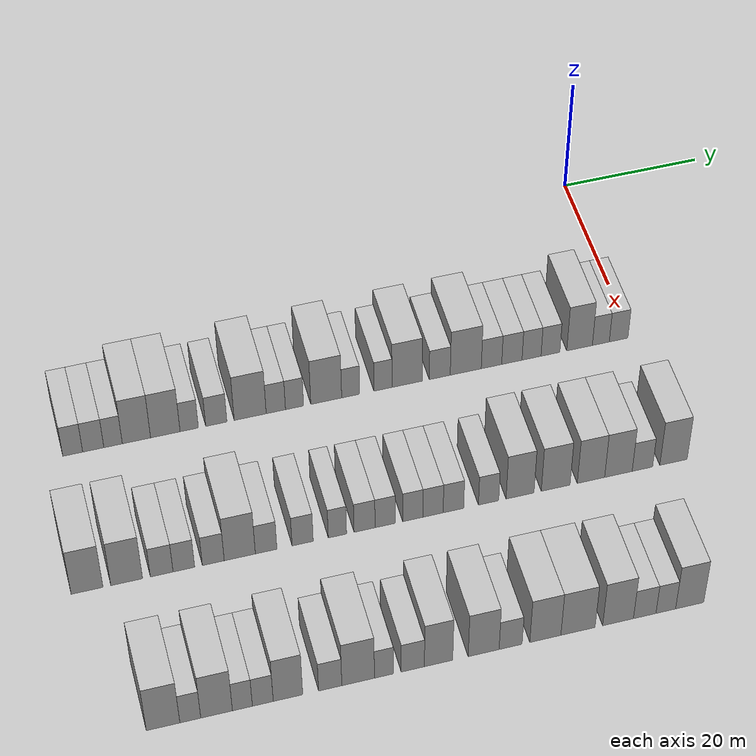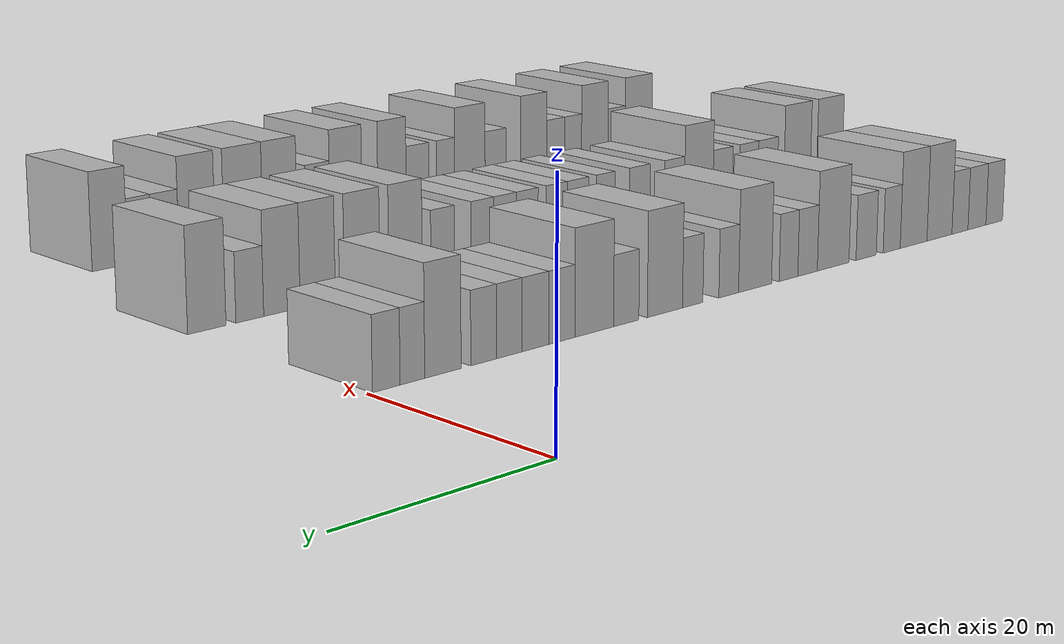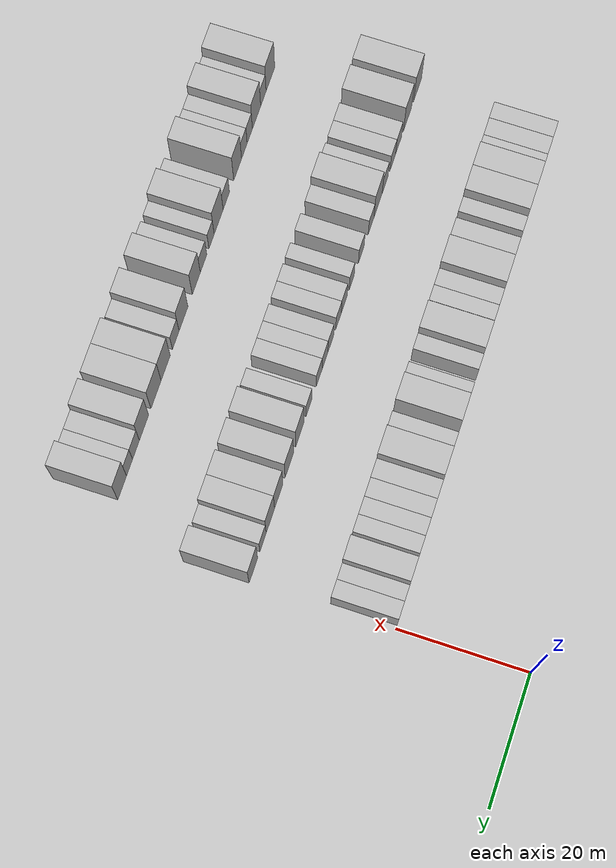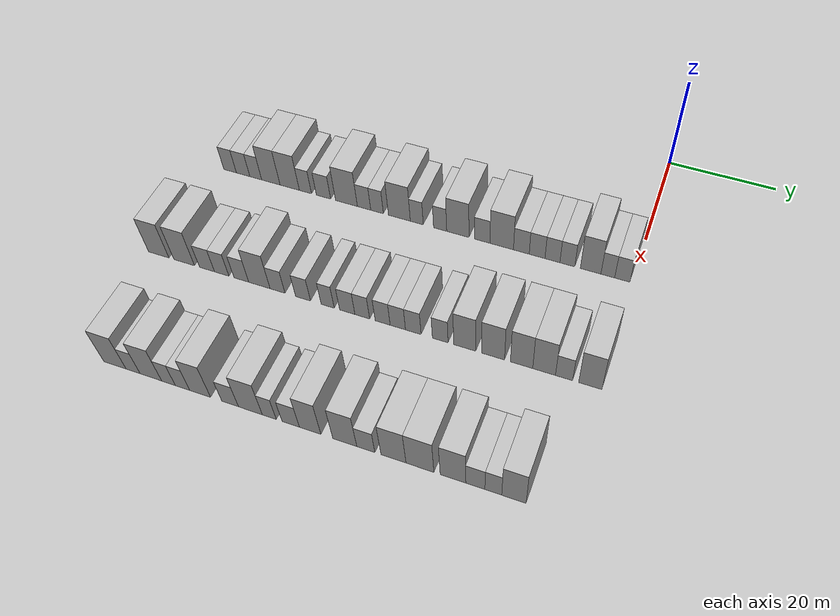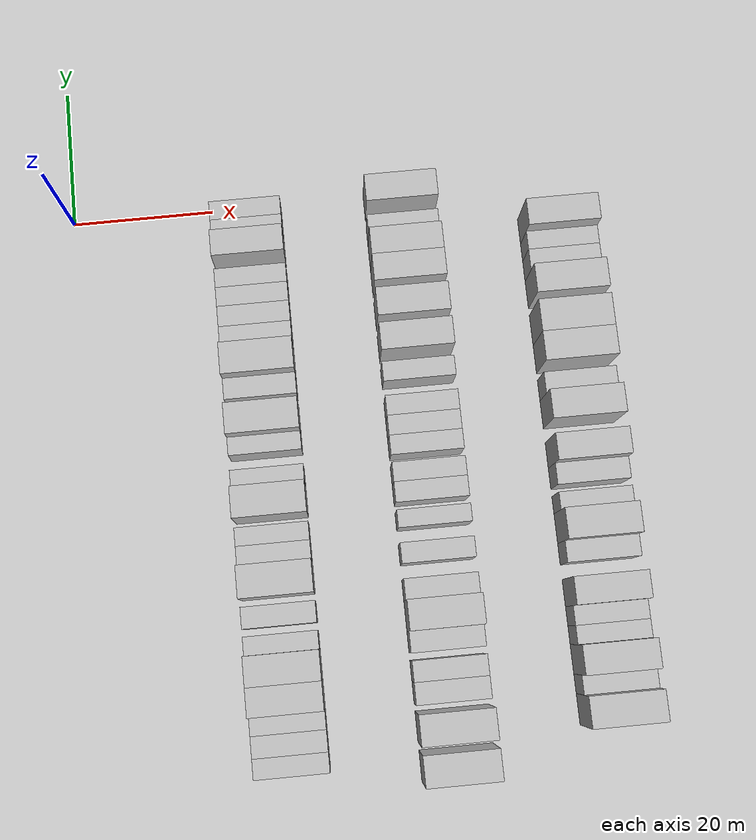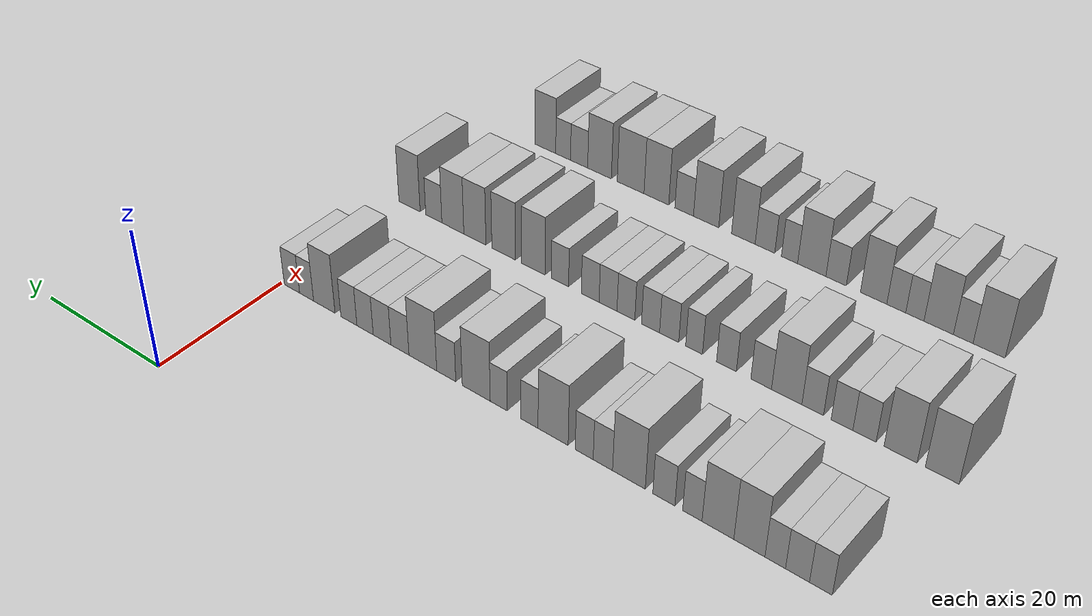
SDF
<sdf version="1.6">
 <world name="default">
  <model name="building_45">
   <static>1</static>
   <pose>25.0000 -77.9295 0 0.000000 0.000000 0.000000</pose>
   <link name="link">
    <pose>0 0 3.00 0 0 0</pose>
    <collision name="collision"><geometry><box><size>10.0000 2.6673 6.0000</size></box></geometry></collision>
    <visual name="visual">
     <cast_shadows>0</cast_shadows>
     <geometry><box><size>10.0000 2.6673 6.0000</size></box></geometry>
     <material>
      <script>
       <uri>model://HANNAS_wall/materials/scripts</uri>
       <uri>model://HANNAS_wall/materials/textures</uri>
       <name>vrc/HANNAS_wall</name>
      </script>
     </material>
    </visual>
   </link>
  </model>
  <model name="building_46">
   <static>1</static>
   <pose>25.0000 -75.1723 0 0.000000 0.000000 0.000000</pose>
   <link name="link">
    <pose>0 0 3.00 0 0 0</pose>
    <collision name="collision"><geometry><box><size>10.0000 2.8470 6.0000</size></box></geometry></collision>
    <visual name="visual">
     <cast_shadows>0</cast_shadows>
     <geometry><box><size>10.0000 2.8470 6.0000</size></box></geometry>
     <material>
      <script>
       <uri>model://HANNAS_wall/materials/scripts</uri>
       <uri>model://HANNAS_wall/materials/textures</uri>
       <name>vrc/HANNAS_wall</name>
      </script>
     </material>
    </visual>
   </link>
  </model>
  <model name="building_47">
   <static>1</static>
   <pose>25.0000 -72.5054 0 0.000000 0.000000 0.000000</pose>
   <link name="link">
    <pose>0 0 3.00 0 0 0</pose>
    <collision name="collision"><geometry><box><size>10.0000 2.4868 6.0000</size></box></geometry></collision>
    <visual name="visual">
     <cast_shadows>0</cast_shadows>
     <geometry><box><size>10.0000 2.4868 6.0000</size></box></geometry>
     <material>
      <script>
       <uri>model://HANNAS_wall/materials/scripts</uri>
       <uri>model://HANNAS_wall/materials/textures</uri>
       <name>vrc/HANNAS_wall</name>
      </script>
     </material>
    </visual>
   </link>
  </model>
  <model name="building_48">
   <static>1</static>
   <pose>25.0000 -69.3493 0 0.000000 0.000000 0.000000</pose>
   <link name="link">
    <pose>0 0 4.50 0 0 0</pose>
    <collision name="collision"><geometry><box><size>10.0000 3.8254 9.0000</size></box></geometry></collision>
    <visual name="visual">
     <cast_shadows>0</cast_shadows>
     <geometry><box><size>10.0000 3.8254 9.0000</size></box></geometry>
     <material>
      <script>
       <uri>model://HANNAS_wall/materials/scripts</uri>
       <uri>model://HANNAS_wall/materials/textures</uri>
       <name>vrc/HANNAS_wall</name>
      </script>
     </material>
    </visual>
   </link>
  </model>
  <model name="building_49">
   <static>1</static>
   <pose>25.0000 -65.4338 0 0.000000 0.000000 0.000000</pose>
   <link name="link">
    <pose>0 0 4.50 0 0 0</pose>
    <collision name="collision"><geometry><box><size>10.0000 4.0057 9.0000</size></box></geometry></collision>
    <visual name="visual">
     <cast_shadows>0</cast_shadows>
     <geometry><box><size>10.0000 4.0057 9.0000</size></box></geometry>
     <material>
      <script>
       <uri>model://HANNAS_wall/materials/scripts</uri>
       <uri>model://HANNAS_wall/materials/textures</uri>
       <name>vrc/HANNAS_wall</name>
      </script>
     </material>
    </visual>
   </link>
  </model>
  <model name="building_50">
   <static>1</static>
   <pose>25.0000 -62.1860 0 0.000000 0.000000 0.000000</pose>
   <link name="link">
    <pose>0 0 3.00 0 0 0</pose>
    <collision name="collision"><geometry><box><size>10.0000 2.4898 6.0000</size></box></geometry></collision>
    <visual name="visual">
     <cast_shadows>0</cast_shadows>
     <geometry><box><size>10.0000 2.4898 6.0000</size></box></geometry>
     <material>
      <script>
       <uri>model://HANNAS_wall/materials/scripts</uri>
       <uri>model://HANNAS_wall/materials/textures</uri>
       <name>vrc/HANNAS_wall</name>
      </script>
     </material>
    </visual>
   </link>
  </model>
  <model name="building_51">
   <static>1</static>
   <pose>25.0000 -58.4913 0 0.000000 0.000000 0.000000</pose>
   <link name="link">
    <pose>0 0 3.00 0 0 0</pose>
    <collision name="collision"><geometry><box><size>10.0000 2.8997 6.0000</size></box></geometry></collision>
    <visual name="visual">
     <cast_shadows>0</cast_shadows>
     <geometry><box><size>10.0000 2.8997 6.0000</size></box></geometry>
     <material>
      <script>
       <uri>model://HANNAS_wall/materials/scripts</uri>
       <uri>model://HANNAS_wall/materials/textures</uri>
       <name>vrc/HANNAS_wall</name>
      </script>
     </material>
    </visual>
   </link>
  </model>
  <model name="building_52">
   <static>1</static>
   <pose>25.0000 -53.8438 0 0.000000 0.000000 0.000000</pose>
   <link name="link">
    <pose>0 0 4.50 0 0 0</pose>
    <collision name="collision"><geometry><box><size>10.0000 4.3952 9.0000</size></box></geometry></collision>
    <visual name="visual">
     <cast_shadows>0</cast_shadows>
     <geometry><box><size>10.0000 4.3952 9.0000</size></box></geometry>
     <material>
      <script>
       <uri>model://HANNAS_wall/materials/scripts</uri>
       <uri>model://HANNAS_wall/materials/textures</uri>
       <name>vrc/HANNAS_wall</name>
      </script>
     </material>
    </visual>
   </link>
  </model>
  <model name="building_53">
   <static>1</static>
   <pose>25.0000 -50.3168 0 0.000000 0.000000 0.000000</pose>
   <link name="link">
    <pose>0 0 3.00 0 0 0</pose>
    <collision name="collision"><geometry><box><size>10.0000 2.6588 6.0000</size></box></geometry></collision>
    <visual name="visual">
     <cast_shadows>0</cast_shadows>
     <geometry><box><size>10.0000 2.6588 6.0000</size></box></geometry>
     <material>
      <script>
       <uri>model://HANNAS_wall/materials/scripts</uri>
       <uri>model://HANNAS_wall/materials/textures</uri>
       <name>vrc/HANNAS_wall</name>
      </script>
     </material>
    </visual>
   </link>
  </model>
  <model name="building_54">
   <static>1</static>
   <pose>25.0000 -47.7360 0 0.000000 0.000000 0.000000</pose>
   <link name="link">
    <pose>0 0 3.00 0 0 0</pose>
    <collision name="collision"><geometry><box><size>10.0000 2.5027 6.0000</size></box></geometry></collision>
    <visual name="visual">
     <cast_shadows>0</cast_shadows>
     <geometry><box><size>10.0000 2.5027 6.0000</size></box></geometry>
     <material>
      <script>
       <uri>model://HANNAS_wall/materials/scripts</uri>
       <uri>model://HANNAS_wall/materials/textures</uri>
       <name>vrc/HANNAS_wall</name>
      </script>
     </material>
    </visual>
   </link>
  </model>
  <model name="building_55">
   <static>1</static>
   <pose>25.0000 -43.3398 0 0.000000 0.000000 0.000000</pose>
   <link name="link">
    <pose>0 0 4.50 0 0 0</pose>
    <collision name="collision"><geometry><box><size>10.0000 4.2897 9.0000</size></box></geometry></collision>
    <visual name="visual">
     <cast_shadows>0</cast_shadows>
     <geometry><box><size>10.0000 4.2897 9.0000</size></box></geometry>
     <material>
      <script>
       <uri>model://HANNAS_wall/materials/scripts</uri>
       <uri>model://HANNAS_wall/materials/textures</uri>
       <name>vrc/HANNAS_wall</name>
      </script>
     </material>
    </visual>
   </link>
  </model>
  <model name="building_56">
   <static>1</static>
   <pose>25.0000 -39.9396 0 0.000000 0.000000 0.000000</pose>
   <link name="link">
    <pose>0 0 3.00 0 0 0</pose>
    <collision name="collision"><geometry><box><size>10.0000 2.5107 6.0000</size></box></geometry></collision>
    <visual name="visual">
     <cast_shadows>0</cast_shadows>
     <geometry><box><size>10.0000 2.5107 6.0000</size></box></geometry>
     <material>
      <script>
       <uri>model://HANNAS_wall/materials/scripts</uri>
       <uri>model://HANNAS_wall/materials/textures</uri>
       <name>vrc/HANNAS_wall</name>
      </script>
     </material>
    </visual>
   </link>
  </model>
  <model name="building_57">
   <static>1</static>
   <pose>25.0000 -35.4234 0 0.000000 0.000000 0.000000</pose>
   <link name="link">
    <pose>0 0 3.00 0 0 0</pose>
    <collision name="collision"><geometry><box><size>10.0000 2.5218 6.0000</size></box></geometry></collision>
    <visual name="visual">
     <cast_shadows>0</cast_shadows>
     <geometry><box><size>10.0000 2.5218 6.0000</size></box></geometry>
     <material>
      <script>
       <uri>model://HANNAS_wall/materials/scripts</uri>
       <uri>model://HANNAS_wall/materials/textures</uri>
       <name>vrc/HANNAS_wall</name>
      </script>
     </material>
    </visual>
   </link>
  </model>
  <model name="building_58">
   <static>1</static>
   <pose>25.0000 -32.0395 0 0.000000 0.000000 0.000000</pose>
   <link name="link">
    <pose>0 0 4.50 0 0 0</pose>
    <collision name="collision"><geometry><box><size>10.0000 4.2459 9.0000</size></box></geometry></collision>
    <visual name="visual">
     <cast_shadows>0</cast_shadows>
     <geometry><box><size>10.0000 4.2459 9.0000</size></box></geometry>
     <material>
      <script>
       <uri>model://HANNAS_wall/materials/scripts</uri>
       <uri>model://HANNAS_wall/materials/textures</uri>
       <name>vrc/HANNAS_wall</name>
      </script>
     </material>
    </visual>
   </link>
  </model>
  <model name="building_59">
   <static>1</static>
   <pose>25.0000 -27.4357 0 0.000000 0.000000 0.000000</pose>
   <link name="link">
    <pose>0 0 3.00 0 0 0</pose>
    <collision name="collision"><geometry><box><size>10.0000 2.9616 6.0000</size></box></geometry></collision>
    <visual name="visual">
     <cast_shadows>0</cast_shadows>
     <geometry><box><size>10.0000 2.9616 6.0000</size></box></geometry>
     <material>
      <script>
       <uri>model://HANNAS_wall/materials/scripts</uri>
       <uri>model://HANNAS_wall/materials/textures</uri>
       <name>vrc/HANNAS_wall</name>
      </script>
     </material>
    </visual>
   </link>
  </model>
  <model name="building_60">
   <static>1</static>
   <pose>25.0000 -23.7570 0 0.000000 0.000000 0.000000</pose>
   <link name="link">
    <pose>0 0 4.50 0 0 0</pose>
    <collision name="collision"><geometry><box><size>10.0000 4.3959 9.0000</size></box></geometry></collision>
    <visual name="visual">
     <cast_shadows>0</cast_shadows>
     <geometry><box><size>10.0000 4.3959 9.0000</size></box></geometry>
     <material>
      <script>
       <uri>model://HANNAS_wall/materials/scripts</uri>
       <uri>model://HANNAS_wall/materials/textures</uri>
       <name>vrc/HANNAS_wall</name>
      </script>
     </material>
    </visual>
   </link>
  </model>
  <model name="building_61">
   <static>1</static>
   <pose>25.0000 -20.1028 0 0.000000 0.000000 0.000000</pose>
   <link name="link">
    <pose>0 0 3.00 0 0 0</pose>
    <collision name="collision"><geometry><box><size>10.0000 2.9125 6.0000</size></box></geometry></collision>
    <visual name="visual">
     <cast_shadows>0</cast_shadows>
     <geometry><box><size>10.0000 2.9125 6.0000</size></box></geometry>
     <material>
      <script>
       <uri>model://HANNAS_wall/materials/scripts</uri>
       <uri>model://HANNAS_wall/materials/textures</uri>
       <name>vrc/HANNAS_wall</name>
      </script>
     </material>
    </visual>
   </link>
  </model>
  <model name="building_62">
   <static>1</static>
   <pose>25.0000 -17.1964 0 0.000000 0.000000 0.000000</pose>
   <link name="link">
    <pose>0 0 3.00 0 0 0</pose>
    <collision name="collision"><geometry><box><size>10.0000 2.9003 6.0000</size></box></geometry></collision>
    <visual name="visual">
     <cast_shadows>0</cast_shadows>
     <geometry><box><size>10.0000 2.9003 6.0000</size></box></geometry>
     <material>
      <script>
       <uri>model://HANNAS_wall/materials/scripts</uri>
       <uri>model://HANNAS_wall/materials/textures</uri>
       <name>vrc/HANNAS_wall</name>
      </script>
     </material>
    </visual>
   </link>
  </model>
  <model name="building_63">
   <static>1</static>
   <pose>25.0000 -14.3856 0 0.000000 0.000000 0.000000</pose>
   <link name="link">
    <pose>0 0 3.00 0 0 0</pose>
    <collision name="collision"><geometry><box><size>10.0000 2.7212 6.0000</size></box></geometry></collision>
    <visual name="visual">
     <cast_shadows>0</cast_shadows>
     <geometry><box><size>10.0000 2.7212 6.0000</size></box></geometry>
     <material>
      <script>
       <uri>model://HANNAS_wall/materials/scripts</uri>
       <uri>model://HANNAS_wall/materials/textures</uri>
       <name>vrc/HANNAS_wall</name>
      </script>
     </material>
    </visual>
   </link>
  </model>
  <model name="building_64">
   <static>1</static>
   <pose>25.0000 -11.6765 0 0.000000 0.000000 0.000000</pose>
   <link name="link">
    <pose>0 0 3.00 0 0 0</pose>
    <collision name="collision"><geometry><box><size>10.0000 2.6970 6.0000</size></box></geometry></collision>
    <visual name="visual">
     <cast_shadows>0</cast_shadows>
     <geometry><box><size>10.0000 2.6970 6.0000</size></box></geometry>
     <material>
      <script>
       <uri>model://HANNAS_wall/materials/scripts</uri>
       <uri>model://HANNAS_wall/materials/textures</uri>
       <name>vrc/HANNAS_wall</name>
      </script>
     </material>
    </visual>
   </link>
  </model>
  <model name="building_65">
   <static>1</static>
   <pose>25.0000 -7.4830 0 0.000000 0.000000 0.000000</pose>
   <link name="link">
    <pose>0 0 4.50 0 0 0</pose>
    <collision name="collision"><geometry><box><size>10.0000 3.6899 9.0000</size></box></geometry></collision>
    <visual name="visual">
     <cast_shadows>0</cast_shadows>
     <geometry><box><size>10.0000 3.6899 9.0000</size></box></geometry>
     <material>
      <script>
       <uri>model://HANNAS_wall/materials/scripts</uri>
       <uri>model://HANNAS_wall/materials/textures</uri>
       <name>vrc/HANNAS_wall</name>
      </script>
     </material>
    </visual>
   </link>
  </model>
  <model name="building_66">
   <static>1</static>
   <pose>25.0000 -4.4138 0 0.000000 0.000000 0.000000</pose>
   <link name="link">
    <pose>0 0 3.00 0 0 0</pose>
    <collision name="collision"><geometry><box><size>10.0000 2.4485 6.0000</size></box></geometry></collision>
    <visual name="visual">
     <cast_shadows>0</cast_shadows>
     <geometry><box><size>10.0000 2.4485 6.0000</size></box></geometry>
     <material>
      <script>
       <uri>model://HANNAS_wall/materials/scripts</uri>
       <uri>model://HANNAS_wall/materials/textures</uri>
       <name>vrc/HANNAS_wall</name>
      </script>
     </material>
    </visual>
   </link>
  </model>
  <model name="building_67">
   <static>1</static>
   <pose>25.0000 -1.8404 0 0.000000 0.000000 0.000000</pose>
   <link name="link">
    <pose>0 0 3.00 0 0 0</pose>
    <collision name="collision"><geometry><box><size>10.0000 2.6983 6.0000</size></box></geometry></collision>
    <visual name="visual">
     <cast_shadows>0</cast_shadows>
     <geometry><box><size>10.0000 2.6983 6.0000</size></box></geometry>
     <material>
      <script>
       <uri>model://HANNAS_wall/materials/scripts</uri>
       <uri>model://HANNAS_wall/materials/textures</uri>
       <name>vrc/HANNAS_wall</name>
      </script>
     </material>
    </visual>
   </link>
  </model>
  <model name="building_178">
   <static>1</static>
   <pose>47.0000 -80.0000 0 0.000000 0.000000 0.000000</pose>
   <link name="link">
    <pose>0 0 4.50 0 0 0</pose>
    <collision name="collision"><geometry><box><size>10.0000 4.0924 9.0000</size></box></geometry></collision>
    <visual name="visual">
     <cast_shadows>0</cast_shadows>
     <geometry><box><size>10.0000 4.0924 9.0000</size></box></geometry>
     <material>
      <script>
       <uri>model://HANNAS_wall/materials/scripts</uri>
       <uri>model://HANNAS_wall/materials/textures</uri>
       <name>vrc/HANNAS_wall</name>
      </script>
     </material>
    </visual>
   </link>
  </model>
  <model name="building_179">
   <static>1</static>
   <pose>47.0000 -74.9035 0 0.000000 0.000000 0.000000</pose>
   <link name="link">
    <pose>0 0 4.50 0 0 0</pose>
    <collision name="collision"><geometry><box><size>10.0000 4.1007 9.0000</size></box></geometry></collision>
    <visual name="visual">
     <cast_shadows>0</cast_shadows>
     <geometry><box><size>10.0000 4.1007 9.0000</size></box></geometry>
     <material>
      <script>
       <uri>model://HANNAS_wall/materials/scripts</uri>
       <uri>model://HANNAS_wall/materials/textures</uri>
       <name>vrc/HANNAS_wall</name>
      </script>
     </material>
    </visual>
   </link>
  </model>
  <model name="building_180">
   <static>1</static>
   <pose>47.0000 -70.3770 0 0.000000 0.000000 0.000000</pose>
   <link name="link">
    <pose>0 0 3.00 0 0 0</pose>
    <collision name="collision"><geometry><box><size>10.0000 2.9522 6.0000</size></box></geometry></collision>
    <visual name="visual">
     <cast_shadows>0</cast_shadows>
     <geometry><box><size>10.0000 2.9522 6.0000</size></box></geometry>
     <material>
      <script>
       <uri>model://HANNAS_wall/materials/scripts</uri>
       <uri>model://HANNAS_wall/materials/textures</uri>
       <name>vrc/HANNAS_wall</name>
      </script>
     </material>
    </visual>
   </link>
  </model>
  <model name="building_181">
   <static>1</static>
   <pose>47.0000 -67.4968 0 0.000000 0.000000 0.000000</pose>
   <link name="link">
    <pose>0 0 3.00 0 0 0</pose>
    <collision name="collision"><geometry><box><size>10.0000 2.8083 6.0000</size></box></geometry></collision>
    <visual name="visual">
     <cast_shadows>0</cast_shadows>
     <geometry><box><size>10.0000 2.8083 6.0000</size></box></geometry>
     <material>
      <script>
       <uri>model://HANNAS_wall/materials/scripts</uri>
       <uri>model://HANNAS_wall/materials/textures</uri>
       <name>vrc/HANNAS_wall</name>
      </script>
     </material>
    </visual>
   </link>
  </model>
  <model name="building_182">
   <static>1</static>
   <pose>47.0000 -63.6664 0 0.000000 0.000000 0.000000</pose>
   <link name="link">
    <pose>0 0 3.00 0 0 0</pose>
    <collision name="collision"><geometry><box><size>10.0000 2.8524 6.0000</size></box></geometry></collision>
    <visual name="visual">
     <cast_shadows>0</cast_shadows>
     <geometry><box><size>10.0000 2.8524 6.0000</size></box></geometry>
     <material>
      <script>
       <uri>model://HANNAS_wall/materials/scripts</uri>
       <uri>model://HANNAS_wall/materials/textures</uri>
       <name>vrc/HANNAS_wall</name>
      </script>
     </material>
    </visual>
   </link>
  </model>
  <model name="building_183">
   <static>1</static>
   <pose>47.0000 -60.1987 0 0.000000 0.000000 0.000000</pose>
   <link name="link">
    <pose>0 0 4.50 0 0 0</pose>
    <collision name="collision"><geometry><box><size>10.0000 4.0830 9.0000</size></box></geometry></collision>
    <visual name="visual">
     <cast_shadows>0</cast_shadows>
     <geometry><box><size>10.0000 4.0830 9.0000</size></box></geometry>
     <material>
      <script>
       <uri>model://HANNAS_wall/materials/scripts</uri>
       <uri>model://HANNAS_wall/materials/textures</uri>
       <name>vrc/HANNAS_wall</name>
      </script>
     </material>
    </visual>
   </link>
  </model>
  <model name="building_184">
   <static>1</static>
   <pose>47.0000 -56.7410 0 0.000000 0.000000 0.000000</pose>
   <link name="link">
    <pose>0 0 3.00 0 0 0</pose>
    <collision name="collision"><geometry><box><size>10.0000 2.8324 6.0000</size></box></geometry></collision>
    <visual name="visual">
     <cast_shadows>0</cast_shadows>
     <geometry><box><size>10.0000 2.8324 6.0000</size></box></geometry>
     <material>
      <script>
       <uri>model://HANNAS_wall/materials/scripts</uri>
       <uri>model://HANNAS_wall/materials/textures</uri>
       <name>vrc/HANNAS_wall</name>
      </script>
     </material>
    </visual>
   </link>
  </model>
  <model name="building_185">
   <static>1</static>
   <pose>47.0000 -51.9276 0 0.000000 0.000000 0.000000</pose>
   <link name="link">
    <pose>0 0 3.00 0 0 0</pose>
    <collision name="collision"><geometry><box><size>10.0000 2.7942 6.0000</size></box></geometry></collision>
    <visual name="visual">
     <cast_shadows>0</cast_shadows>
     <geometry><box><size>10.0000 2.7942 6.0000</size></box></geometry>
     <material>
      <script>
       <uri>model://HANNAS_wall/materials/scripts</uri>
       <uri>model://HANNAS_wall/materials/textures</uri>
       <name>vrc/HANNAS_wall</name>
      </script>
     </material>
    </visual>
   </link>
  </model>
  <model name="building_186">
   <static>1</static>
   <pose>47.0000 -47.3177 0 0.000000 0.000000 0.000000</pose>
   <link name="link">
    <pose>0 0 3.00 0 0 0</pose>
    <collision name="collision"><geometry><box><size>10.0000 2.4257 6.0000</size></box></geometry></collision>
    <visual name="visual">
     <cast_shadows>0</cast_shadows>
     <geometry><box><size>10.0000 2.4257 6.0000</size></box></geometry>
     <material>
      <script>
       <uri>model://HANNAS_wall/materials/scripts</uri>
       <uri>model://HANNAS_wall/materials/textures</uri>
       <name>vrc/HANNAS_wall</name>
      </script>
     </material>
    </visual>
   </link>
  </model>
  <model name="building_187">
   <static>1</static>
   <pose>47.0000 -43.7033 0 0.000000 0.000000 0.000000</pose>
   <link name="link">
    <pose>0 0 3.00 0 0 0</pose>
    <collision name="collision"><geometry><box><size>10.0000 2.8031 6.0000</size></box></geometry></collision>
    <visual name="visual">
     <cast_shadows>0</cast_shadows>
     <geometry><box><size>10.0000 2.8031 6.0000</size></box></geometry>
     <material>
      <script>
       <uri>model://HANNAS_wall/materials/scripts</uri>
       <uri>model://HANNAS_wall/materials/textures</uri>
       <name>vrc/HANNAS_wall</name>
      </script>
     </material>
    </visual>
   </link>
  </model>
  <model name="building_188">
   <static>1</static>
   <pose>47.0000 -40.9563 0 0.000000 0.000000 0.000000</pose>
   <link name="link">
    <pose>0 0 3.00 0 0 0</pose>
    <collision name="collision"><geometry><box><size>10.0000 2.6908 6.0000</size></box></geometry></collision>
    <visual name="visual">
     <cast_shadows>0</cast_shadows>
     <geometry><box><size>10.0000 2.6908 6.0000</size></box></geometry>
     <material>
      <script>
       <uri>model://HANNAS_wall/materials/scripts</uri>
       <uri>model://HANNAS_wall/materials/textures</uri>
       <name>vrc/HANNAS_wall</name>
      </script>
     </material>
    </visual>
   </link>
  </model>
  <model name="building_189">
   <static>1</static>
   <pose>47.0000 -37.2589 0 0.000000 0.000000 0.000000</pose>
   <link name="link">
    <pose>0 0 3.00 0 0 0</pose>
    <collision name="collision"><geometry><box><size>10.0000 2.7040 6.0000</size></box></geometry></collision>
    <visual name="visual">
     <cast_shadows>0</cast_shadows>
     <geometry><box><size>10.0000 2.7040 6.0000</size></box></geometry>
     <material>
      <script>
       <uri>model://HANNAS_wall/materials/scripts</uri>
       <uri>model://HANNAS_wall/materials/textures</uri>
       <name>vrc/HANNAS_wall</name>
      </script>
     </material>
    </visual>
   </link>
  </model>
  <model name="building_190">
   <static>1</static>
   <pose>47.0000 -34.5333 0 0.000000 0.000000 0.000000</pose>
   <link name="link">
    <pose>0 0 3.00 0 0 0</pose>
    <collision name="collision"><geometry><box><size>10.0000 2.7471 6.0000</size></box></geometry></collision>
    <visual name="visual">
     <cast_shadows>0</cast_shadows>
     <geometry><box><size>10.0000 2.7471 6.0000</size></box></geometry>
     <material>
      <script>
       <uri>model://HANNAS_wall/materials/scripts</uri>
       <uri>model://HANNAS_wall/materials/textures</uri>
       <name>vrc/HANNAS_wall</name>
      </script>
     </material>
    </visual>
   </link>
  </model>
  <model name="building_191">
   <static>1</static>
   <pose>47.0000 -31.7739 0 0.000000 0.000000 0.000000</pose>
   <link name="link">
    <pose>0 0 3.00 0 0 0</pose>
    <collision name="collision"><geometry><box><size>10.0000 2.7716 6.0000</size></box></geometry></collision>
    <visual name="visual">
     <cast_shadows>0</cast_shadows>
     <geometry><box><size>10.0000 2.7716 6.0000</size></box></geometry>
     <material>
      <script>
       <uri>model://HANNAS_wall/materials/scripts</uri>
       <uri>model://HANNAS_wall/materials/textures</uri>
       <name>vrc/HANNAS_wall</name>
      </script>
     </material>
    </visual>
   </link>
  </model>
  <model name="building_192">
   <static>1</static>
   <pose>47.0000 -27.0105 0 0.000000 0.000000 0.000000</pose>
   <link name="link">
    <pose>0 0 3.00 0 0 0</pose>
    <collision name="collision"><geometry><box><size>10.0000 2.7553 6.0000</size></box></geometry></collision>
    <visual name="visual">
     <cast_shadows>0</cast_shadows>
     <geometry><box><size>10.0000 2.7553 6.0000</size></box></geometry>
     <material>
      <script>
       <uri>model://HANNAS_wall/materials/scripts</uri>
       <uri>model://HANNAS_wall/materials/textures</uri>
       <name>vrc/HANNAS_wall</name>
      </script>
     </material>
    </visual>
   </link>
  </model>
  <model name="building_193">
   <static>1</static>
   <pose>47.0000 -22.7267 0 0.000000 0.000000 0.000000</pose>
   <link name="link">
    <pose>0 0 4.50 0 0 0</pose>
    <collision name="collision"><geometry><box><size>10.0000 3.8123 9.0000</size></box></geometry></collision>
    <visual name="visual">
     <cast_shadows>0</cast_shadows>
     <geometry><box><size>10.0000 3.8123 9.0000</size></box></geometry>
     <material>
      <script>
       <uri>model://HANNAS_wall/materials/scripts</uri>
       <uri>model://HANNAS_wall/materials/textures</uri>
       <name>vrc/HANNAS_wall</name>
      </script>
     </material>
    </visual>
   </link>
  </model>
  <model name="building_194">
   <static>1</static>
   <pose>47.0000 -17.8507 0 0.000000 0.000000 0.000000</pose>
   <link name="link">
    <pose>0 0 4.50 0 0 0</pose>
    <collision name="collision"><geometry><box><size>10.0000 3.9397 9.0000</size></box></geometry></collision>
    <visual name="visual">
     <cast_shadows>0</cast_shadows>
     <geometry><box><size>10.0000 3.9397 9.0000</size></box></geometry>
     <material>
      <script>
       <uri>model://HANNAS_wall/materials/scripts</uri>
       <uri>model://HANNAS_wall/materials/textures</uri>
       <name>vrc/HANNAS_wall</name>
      </script>
     </material>
    </visual>
   </link>
  </model>
  <model name="building_195">
   <static>1</static>
   <pose>47.0000 -12.9955 0 0.000000 0.000000 0.000000</pose>
   <link name="link">
    <pose>0 0 4.50 0 0 0</pose>
    <collision name="collision"><geometry><box><size>10.0000 3.7707 9.0000</size></box></geometry></collision>
    <visual name="visual">
     <cast_shadows>0</cast_shadows>
     <geometry><box><size>10.0000 3.7707 9.0000</size></box></geometry>
     <material>
      <script>
       <uri>model://HANNAS_wall/materials/scripts</uri>
       <uri>model://HANNAS_wall/materials/textures</uri>
       <name>vrc/HANNAS_wall</name>
      </script>
     </material>
    </visual>
   </link>
  </model>
  <model name="building_196">
   <static>1</static>
   <pose>47.0000 -9.2051 0 0.000000 0.000000 0.000000</pose>
   <link name="link">
    <pose>0 0 4.50 0 0 0</pose>
    <collision name="collision"><geometry><box><size>10.0000 3.8101 9.0000</size></box></geometry></collision>
    <visual name="visual">
     <cast_shadows>0</cast_shadows>
     <geometry><box><size>10.0000 3.8101 9.0000</size></box></geometry>
     <material>
      <script>
       <uri>model://HANNAS_wall/materials/scripts</uri>
       <uri>model://HANNAS_wall/materials/textures</uri>
       <name>vrc/HANNAS_wall</name>
      </script>
     </material>
    </visual>
   </link>
  </model>
  <model name="building_197">
   <static>1</static>
   <pose>47.0000 -5.8783 0 0.000000 0.000000 0.000000</pose>
   <link name="link">
    <pose>0 0 3.00 0 0 0</pose>
    <collision name="collision"><geometry><box><size>10.0000 2.8435 6.0000</size></box></geometry></collision>
    <visual name="visual">
     <cast_shadows>0</cast_shadows>
     <geometry><box><size>10.0000 2.8435 6.0000</size></box></geometry>
     <material>
      <script>
       <uri>model://HANNAS_wall/materials/scripts</uri>
       <uri>model://HANNAS_wall/materials/textures</uri>
       <name>vrc/HANNAS_wall</name>
      </script>
     </material>
    </visual>
   </link>
  </model>
  <model name="building_198">
   <static>1</static>
   <pose>47.0000 -1.5516 0 0.000000 0.000000 0.000000</pose>
   <link name="link">
    <pose>0 0 4.50 0 0 0</pose>
    <collision name="collision"><geometry><box><size>10.0000 3.8099 9.0000</size></box></geometry></collision>
    <visual name="visual">
     <cast_shadows>0</cast_shadows>
     <geometry><box><size>10.0000 3.8099 9.0000</size></box></geometry>
     <material>
      <script>
       <uri>model://HANNAS_wall/materials/scripts</uri>
       <uri>model://HANNAS_wall/materials/textures</uri>
       <name>vrc/HANNAS_wall</name>
      </script>
     </material>
    </visual>
   </link>
  </model>
  <model name="building_297">
   <static>1</static>
   <pose>69.0000 -74.6576 0 0.000000 0.000000 0.000000</pose>
   <link name="link">
    <pose>0 0 4.50 0 0 0</pose>
    <collision name="collision"><geometry><box><size>10.0000 4.1549 9.0000</size></box></geometry></collision>
    <visual name="visual">
     <cast_shadows>0</cast_shadows>
     <geometry><box><size>10.0000 4.1549 9.0000</size></box></geometry>
     <material>
      <script>
       <uri>model://HANNAS_wall/materials/scripts</uri>
       <uri>model://HANNAS_wall/materials/textures</uri>
       <name>vrc/HANNAS_wall</name>
      </script>
     </material>
    </visual>
   </link>
  </model>
  <model name="building_298">
   <static>1</static>
   <pose>69.0000 -71.2847 0 0.000000 0.000000 0.000000</pose>
   <link name="link">
    <pose>0 0 3.00 0 0 0</pose>
    <collision name="collision"><geometry><box><size>10.0000 2.5909 6.0000</size></box></geometry></collision>
    <visual name="visual">
     <cast_shadows>0</cast_shadows>
     <geometry><box><size>10.0000 2.5909 6.0000</size></box></geometry>
     <material>
      <script>
       <uri>model://HANNAS_wall/materials/scripts</uri>
       <uri>model://HANNAS_wall/materials/textures</uri>
       <name>vrc/HANNAS_wall</name>
      </script>
     </material>
    </visual>
   </link>
  </model>
  <model name="building_299">
   <static>1</static>
   <pose>69.0000 -68.0179 0 0.000000 0.000000 0.000000</pose>
   <link name="link">
    <pose>0 0 4.50 0 0 0</pose>
    <collision name="collision"><geometry><box><size>10.0000 3.9426 9.0000</size></box></geometry></collision>
    <visual name="visual">
     <cast_shadows>0</cast_shadows>
     <geometry><box><size>10.0000 3.9426 9.0000</size></box></geometry>
     <material>
      <script>
       <uri>model://HANNAS_wall/materials/scripts</uri>
       <uri>model://HANNAS_wall/materials/textures</uri>
       <name>vrc/HANNAS_wall</name>
      </script>
     </material>
    </visual>
   </link>
  </model>
  <model name="building_300">
   <static>1</static>
   <pose>69.0000 -64.8006 0 0.000000 0.000000 0.000000</pose>
   <link name="link">
    <pose>0 0 3.00 0 0 0</pose>
    <collision name="collision"><geometry><box><size>10.0000 2.4920 6.0000</size></box></geometry></collision>
    <visual name="visual">
     <cast_shadows>0</cast_shadows>
     <geometry><box><size>10.0000 2.4920 6.0000</size></box></geometry>
     <material>
      <script>
       <uri>model://HANNAS_wall/materials/scripts</uri>
       <uri>model://HANNAS_wall/materials/textures</uri>
       <name>vrc/HANNAS_wall</name>
      </script>
     </material>
    </visual>
   </link>
  </model>
  <model name="building_301">
   <static>1</static>
   <pose>69.0000 -62.2480 0 0.000000 0.000000 0.000000</pose>
   <link name="link">
    <pose>0 0 3.00 0 0 0</pose>
    <collision name="collision"><geometry><box><size>10.0000 2.6132 6.0000</size></box></geometry></collision>
    <visual name="visual">
     <cast_shadows>0</cast_shadows>
     <geometry><box><size>10.0000 2.6132 6.0000</size></box></geometry>
     <material>
      <script>
       <uri>model://HANNAS_wall/materials/scripts</uri>
       <uri>model://HANNAS_wall/materials/textures</uri>
       <name>vrc/HANNAS_wall</name>
      </script>
     </material>
    </visual>
   </link>
  </model>
  <model name="building_302">
   <static>1</static>
   <pose>69.0000 -59.0892 0 0.000000 0.000000 0.000000</pose>
   <link name="link">
    <pose>0 0 4.50 0 0 0</pose>
    <collision name="collision"><geometry><box><size>10.0000 3.7042 9.0000</size></box></geometry></collision>
    <visual name="visual">
     <cast_shadows>0</cast_shadows>
     <geometry><box><size>10.0000 3.7042 9.0000</size></box></geometry>
     <material>
      <script>
       <uri>model://HANNAS_wall/materials/scripts</uri>
       <uri>model://HANNAS_wall/materials/textures</uri>
       <name>vrc/HANNAS_wall</name>
      </script>
     </material>
    </visual>
   </link>
  </model>
  <model name="building_303">
   <static>1</static>
   <pose>69.0000 -53.7679 0 0.000000 0.000000 0.000000</pose>
   <link name="link">
    <pose>0 0 3.00 0 0 0</pose>
    <collision name="collision"><geometry><box><size>10.0000 2.9385 6.0000</size></box></geometry></collision>
    <visual name="visual">
     <cast_shadows>0</cast_shadows>
     <geometry><box><size>10.0000 2.9385 6.0000</size></box></geometry>
     <material>
      <script>
       <uri>model://HANNAS_wall/materials/scripts</uri>
       <uri>model://HANNAS_wall/materials/textures</uri>
       <name>vrc/HANNAS_wall</name>
      </script>
     </material>
    </visual>
   </link>
  </model>
  <model name="building_304">
   <static>1</static>
   <pose>69.0000 -50.2243 0 0.000000 0.000000 0.000000</pose>
   <link name="link">
    <pose>0 0 4.50 0 0 0</pose>
    <collision name="collision"><geometry><box><size>10.0000 4.1486 9.0000</size></box></geometry></collision>
    <visual name="visual">
     <cast_shadows>0</cast_shadows>
     <geometry><box><size>10.0000 4.1486 9.0000</size></box></geometry>
     <material>
      <script>
       <uri>model://HANNAS_wall/materials/scripts</uri>
       <uri>model://HANNAS_wall/materials/textures</uri>
       <name>vrc/HANNAS_wall</name>
      </script>
     </material>
    </visual>
   </link>
  </model>
  <model name="building_305">
   <static>1</static>
   <pose>69.0000 -46.9462 0 0.000000 0.000000 0.000000</pose>
   <link name="link">
    <pose>0 0 3.00 0 0 0</pose>
    <collision name="collision"><geometry><box><size>10.0000 2.4076 6.0000</size></box></geometry></collision>
    <visual name="visual">
     <cast_shadows>0</cast_shadows>
     <geometry><box><size>10.0000 2.4076 6.0000</size></box></geometry>
     <material>
      <script>
       <uri>model://HANNAS_wall/materials/scripts</uri>
       <uri>model://HANNAS_wall/materials/textures</uri>
       <name>vrc/HANNAS_wall</name>
      </script>
     </material>
    </visual>
   </link>
  </model>
  <model name="building_306">
   <static>1</static>
   <pose>69.0000 -43.2603 0 0.000000 0.000000 0.000000</pose>
   <link name="link">
    <pose>0 0 3.00 0 0 0</pose>
    <collision name="collision"><geometry><box><size>10.0000 2.9642 6.0000</size></box></geometry></collision>
    <visual name="visual">
     <cast_shadows>0</cast_shadows>
     <geometry><box><size>10.0000 2.9642 6.0000</size></box></geometry>
     <material>
      <script>
       <uri>model://HANNAS_wall/materials/scripts</uri>
       <uri>model://HANNAS_wall/materials/textures</uri>
       <name>vrc/HANNAS_wall</name>
      </script>
     </material>
    </visual>
   </link>
  </model>
  <model name="building_307">
   <static>1</static>
   <pose>69.0000 -39.9596 0 0.000000 0.000000 0.000000</pose>
   <link name="link">
    <pose>0 0 4.50 0 0 0</pose>
    <collision name="collision"><geometry><box><size>10.0000 3.6372 9.0000</size></box></geometry></collision>
    <visual name="visual">
     <cast_shadows>0</cast_shadows>
     <geometry><box><size>10.0000 3.6372 9.0000</size></box></geometry>
     <material>
      <script>
       <uri>model://HANNAS_wall/materials/scripts</uri>
       <uri>model://HANNAS_wall/materials/textures</uri>
       <name>vrc/HANNAS_wall</name>
      </script>
     </material>
    </visual>
   </link>
  </model>
  <model name="building_308">
   <static>1</static>
   <pose>69.0000 -34.1440 0 0.000000 0.000000 0.000000</pose>
   <link name="link">
    <pose>0 0 4.50 0 0 0</pose>
    <collision name="collision"><geometry><box><size>10.0000 3.9940 9.0000</size></box></geometry></collision>
    <visual name="visual">
     <cast_shadows>0</cast_shadows>
     <geometry><box><size>10.0000 3.9940 9.0000</size></box></geometry>
     <material>
      <script>
       <uri>model://HANNAS_wall/materials/scripts</uri>
       <uri>model://HANNAS_wall/materials/textures</uri>
       <name>vrc/HANNAS_wall</name>
      </script>
     </material>
    </visual>
   </link>
  </model>
  <model name="building_309">
   <static>1</static>
   <pose>69.0000 -30.6529 0 0.000000 0.000000 0.000000</pose>
   <link name="link">
    <pose>0 0 3.00 0 0 0</pose>
    <collision name="collision"><geometry><box><size>10.0000 2.9882 6.0000</size></box></geometry></collision>
    <visual name="visual">
     <cast_shadows>0</cast_shadows>
     <geometry><box><size>10.0000 2.9882 6.0000</size></box></geometry>
     <material>
      <script>
       <uri>model://HANNAS_wall/materials/scripts</uri>
       <uri>model://HANNAS_wall/materials/textures</uri>
       <name>vrc/HANNAS_wall</name>
      </script>
     </material>
    </visual>
   </link>
  </model>
  <model name="building_310">
   <static>1</static>
   <pose>69.0000 -26.1283 0 0.000000 0.000000 0.000000</pose>
   <link name="link">
    <pose>0 0 4.50 0 0 0</pose>
    <collision name="collision"><geometry><box><size>10.0000 4.0611 9.0000</size></box></geometry></collision>
    <visual name="visual">
     <cast_shadows>0</cast_shadows>
     <geometry><box><size>10.0000 4.0611 9.0000</size></box></geometry>
     <material>
      <script>
       <uri>model://HANNAS_wall/materials/scripts</uri>
       <uri>model://HANNAS_wall/materials/textures</uri>
       <name>vrc/HANNAS_wall</name>
      </script>
     </material>
    </visual>
   </link>
  </model>
  <model name="building_311">
   <static>1</static>
   <pose>69.0000 -21.8571 0 0.000000 0.000000 0.000000</pose>
   <link name="link">
    <pose>0 0 4.50 0 0 0</pose>
    <collision name="collision"><geometry><box><size>10.0000 4.4812 9.0000</size></box></geometry></collision>
    <visual name="visual">
     <cast_shadows>0</cast_shadows>
     <geometry><box><size>10.0000 4.4812 9.0000</size></box></geometry>
     <material>
      <script>
       <uri>model://HANNAS_wall/materials/scripts</uri>
       <uri>model://HANNAS_wall/materials/textures</uri>
       <name>vrc/HANNAS_wall</name>
      </script>
     </material>
    </visual>
   </link>
  </model>
  <model name="building_312">
   <static>1</static>
   <pose>69.0000 -16.5875 0 0.000000 0.000000 0.000000</pose>
   <link name="link">
    <pose>0 0 4.50 0 0 0</pose>
    <collision name="collision"><geometry><box><size>10.0000 4.0580 9.0000</size></box></geometry></collision>
    <visual name="visual">
     <cast_shadows>0</cast_shadows>
     <geometry><box><size>10.0000 4.0580 9.0000</size></box></geometry>
     <material>
      <script>
       <uri>model://HANNAS_wall/materials/scripts</uri>
       <uri>model://HANNAS_wall/materials/textures</uri>
       <name>vrc/HANNAS_wall</name>
      </script>
     </material>
    </visual>
   </link>
  </model>
  <model name="building_313">
   <static>1</static>
   <pose>69.0000 -13.0663 0 0.000000 0.000000 0.000000</pose>
   <link name="link">
    <pose>0 0 3.00 0 0 0</pose>
    <collision name="collision"><geometry><box><size>10.0000 2.9845 6.0000</size></box></geometry></collision>
    <visual name="visual">
     <cast_shadows>0</cast_shadows>
     <geometry><box><size>10.0000 2.9845 6.0000</size></box></geometry>
     <material>
      <script>
       <uri>model://HANNAS_wall/materials/scripts</uri>
       <uri>model://HANNAS_wall/materials/textures</uri>
       <name>vrc/HANNAS_wall</name>
      </script>
     </material>
    </visual>
   </link>
  </model>
  <model name="building_314">
   <static>1</static>
   <pose>69.0000 -10.2707 0 0.000000 0.000000 0.000000</pose>
   <link name="link">
    <pose>0 0 3.00 0 0 0</pose>
    <collision name="collision"><geometry><box><size>10.0000 2.6067 6.0000</size></box></geometry></collision>
    <visual name="visual">
     <cast_shadows>0</cast_shadows>
     <geometry><box><size>10.0000 2.6067 6.0000</size></box></geometry>
     <material>
      <script>
       <uri>model://HANNAS_wall/materials/scripts</uri>
       <uri>model://HANNAS_wall/materials/textures</uri>
       <name>vrc/HANNAS_wall</name>
      </script>
     </material>
    </visual>
   </link>
  </model>
  <model name="building_315">
   <static>1</static>
   <pose>69.0000 -7.0938 0 0.000000 0.000000 0.000000</pose>
   <link name="link">
    <pose>0 0 4.50 0 0 0</pose>
    <collision name="collision"><geometry><box><size>10.0000 3.7470 9.0000</size></box></geometry></collision>
    <visual name="visual">
     <cast_shadows>0</cast_shadows>
     <geometry><box><size>10.0000 3.7470 9.0000</size></box></geometry>
     <material>
      <script>
       <uri>model://HANNAS_wall/materials/scripts</uri>
       <uri>model://HANNAS_wall/materials/textures</uri>
       <name>vrc/HANNAS_wall</name>
      </script>
     </material>
    </visual>
   </link>
  </model>
 </world>
</sdf>
